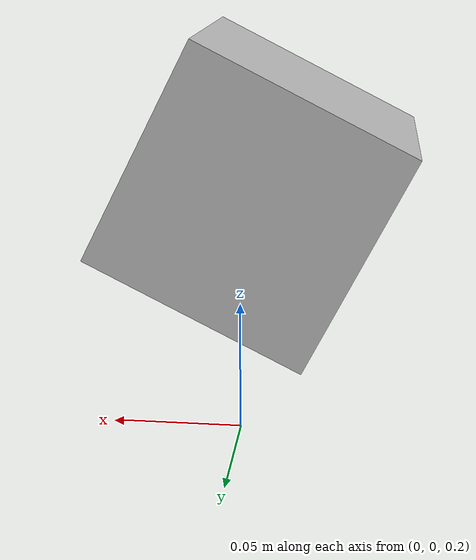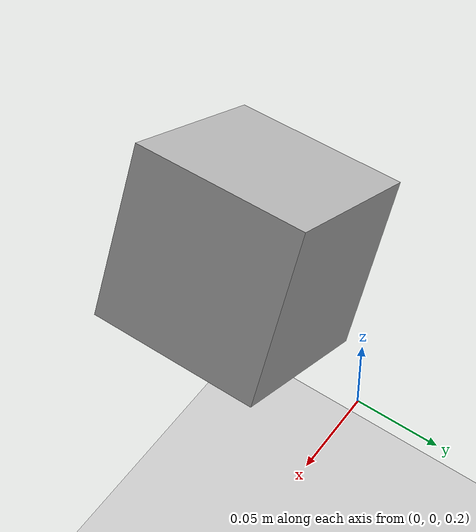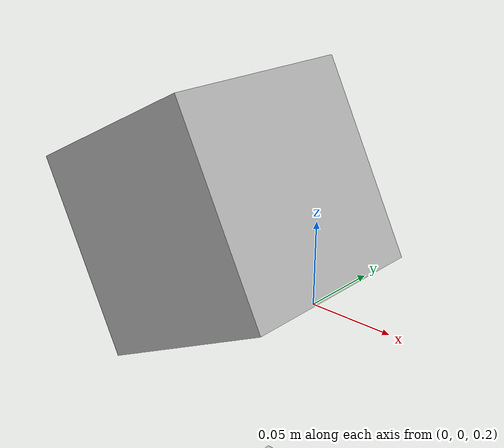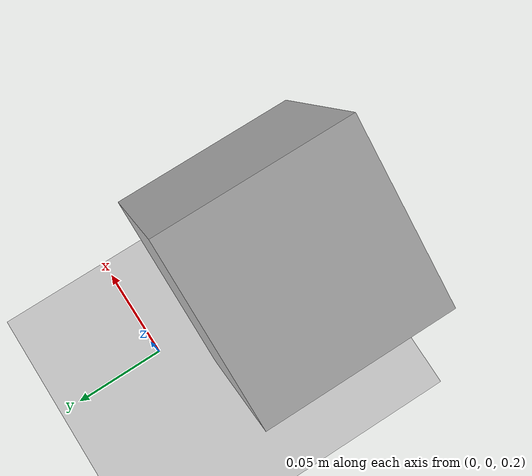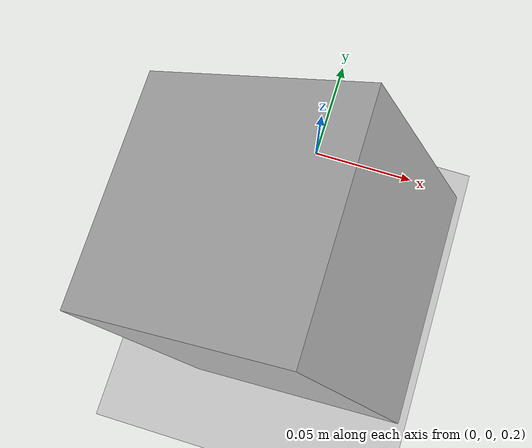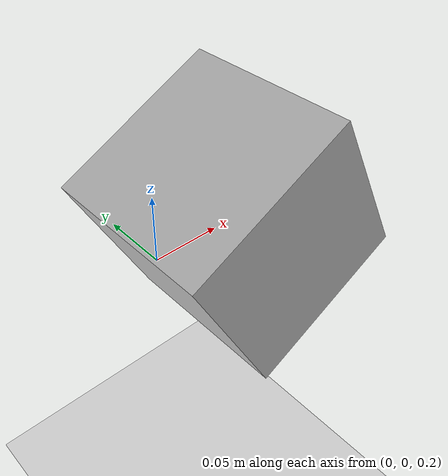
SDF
<?xml version="1.0"?>
<sdf version="1.5">
  <world name="camera2">

    <!-- A global light source -->
    <include>
      <uri>model://sun</uri>
    </include>

    <!-- A ground plane -->
    <include>
      <uri>model://ground_plane</uri>
      <pose>0 0 0 0 0 0</pose>
    </include>

    <!-- camera view -->
    <gui>
      <camera name="user_default">
            <pose>0.556 -0.9132 0.8266 0 0.59 2.15</pose>
      </camera>
    </gui>

    <!-- camera model -->
    <include>
      <uri>model://camera-plugin</uri>
      <pose>0 -0.07266 0.28 0 1.1 0</pose>
      <static>1</static>
    </include>

  </world>
</sdf>

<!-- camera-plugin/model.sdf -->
<sdf version="1.5">
  <model name="camera">
    <static>true</static>
    <pose>0 0 0.05 0 0 0</pose>
    <link name="link">
      <inertial>
        <mass>0.1</mass>
        <inertia>
          <ixx>0.000166667</ixx>
          <iyy>0.000166667</iyy>
          <izz>0.000166667</izz>
        </inertia>
      </inertial>
      <collision name="collision">
        <geometry>
          <box>
            <size>0.1 0.1 0.1</size>
          </box>
        </geometry>
      </collision>
      <visual name="visual">
        <geometry>
          <box>
            <size>0.1 0.1 0.1</size>
          </box>
        </geometry>
      </visual>
    <sensor type="camera" name="camera">
     <camera>
          <horizontal_fov>1.047</horizontal_fov>
          <image>
            <width>320</width>
            <height>240</height>
          </image>
          <clip>
            <near>0.1</near>
            <far>100</far>
          </clip>
        </camera>
        <always_on>1</always_on>
        <update_rate>30</update_rate>
        <visualize>true</visualize>
      <plugin name="camera_controller" filename="libgazebo_ros_camera.so">
        <alwaysOn>true</alwaysOn>
        <updateRate>0.0</updateRate>
        <cameraName>camera</cameraName>
        <imageTopicName>image_raw</imageTopicName>
        <cameraInfoTopicName>camera_info</cameraInfoTopicName>
        <frameName>camera_link_optical</frameName>
        <!-- setting hackBaseline to anything but 0.0 will cause a misalignment
            between the gazebo sensor image and the frame it is supposed to
            be attached to -->
        <hackBaseline>0.0</hackBaseline>
        <distortionK1>0.0</distortionK1>
        <distortionK2>0.0</distortionK2>
        <distortionK3>0.0</distortionK3>
        <distortionT1>0.0</distortionT1>
        <distortionT2>0.0</distortionT2>
        <CxPrime>0</CxPrime>
        <Cx>0.0</Cx>
        <Cy>0.0</Cy>
        <focalLength>0.0</focalLength>
      </plugin>
    </sensor>
    </link>
  </model>
</sdf>
